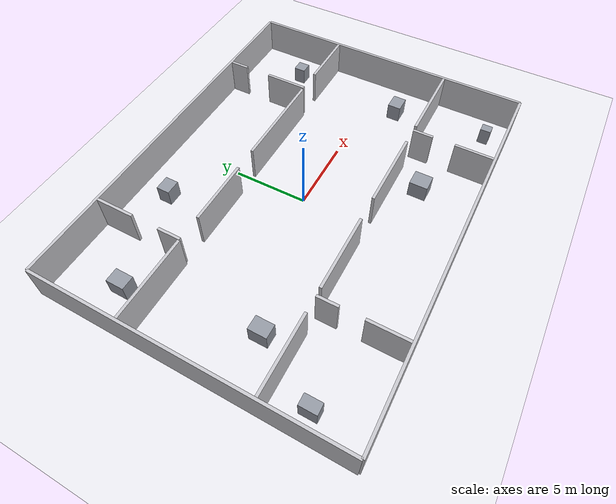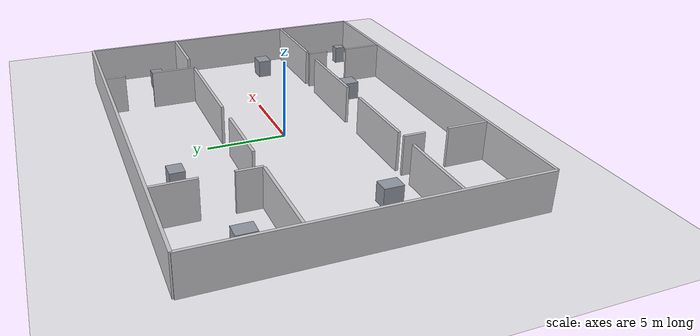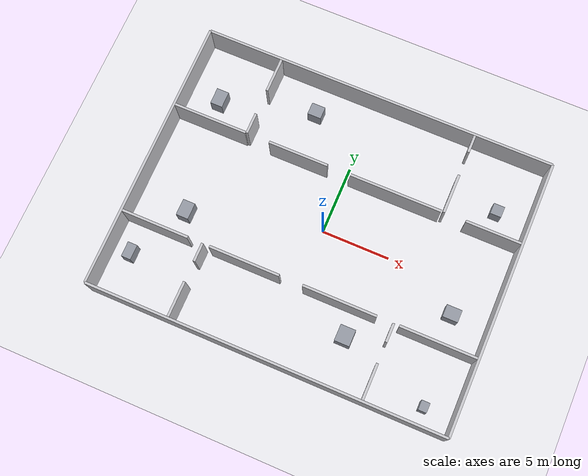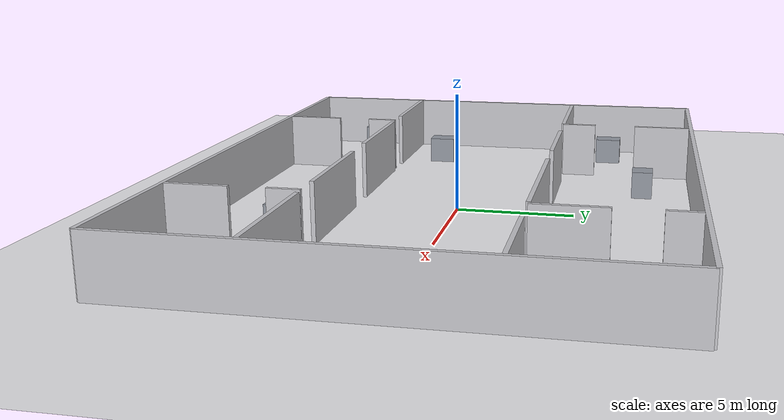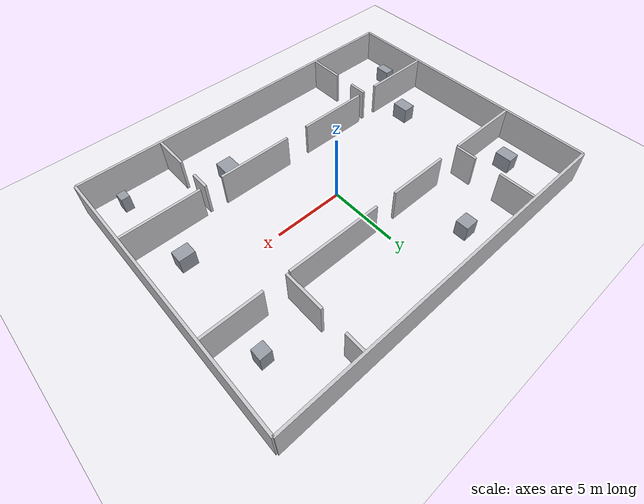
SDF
<?xml version="1.0"?>
<sdf version="1.9"><world name="new_room_world">
<plugin filename="gz-sim-physics-system" name="gz::sim::systems::Physics"/><plugin filename="gz-sim-user-commands-system" name="gz::sim::systems::UserCommands"/><plugin filename="gz-sim-scene-broadcaster-system" name="gz::sim::systems::SceneBroadcaster"/><plugin filename="gz-sim-sensors-system" name="gz::sim::systems::Sensors"><render_engine>ogre2</render_engine></plugin><plugin filename="gz-sim-imu-system" name="gz::sim::systems::Imu"/>
<physics name="new_room_realtime" type="ignored"><max_step_size>0.001</max_step_size><real_time_factor>1</real_time_factor></physics><gravity>0 0 -9.8</gravity><scene><ambient>0.85 0.85 0.87 1</ambient><background>0.68 0.68 0.71 1</background><shadows>false</shadows></scene><light name="sun" type="directional"><cast_shadows>false</cast_shadows><pose>0 0 10 0 0 0</pose><diffuse>0.95 0.95 0.95 1</diffuse><direction>-0.3 0.2 -1</direction></light>
<model name="new_room_ground"><static>true</static><link name="ground_link"><collision name="ground_collision"><geometry><plane><normal>0 0 1</normal><size>40 32</size></plane></geometry></collision><visual name="ground_visual"><geometry><plane><normal>0 0 1</normal><size>40 32</size></plane></geometry><material><ambient>0.92 0.92 0.94 1</ambient><diffuse>0.92 0.92 0.94 1</diffuse></material></visual></link></model>
<model name="mini_hospital_structure"><static>true</static><link name="structure">
<collision name="mx048_c000"><pose>0 10 1.25 0 0 0</pose><geometry><box><size>26 0.18 2.5</size></box></geometry></collision><visual name="mx048_v000"><pose>0 10 1.25 0 0 0</pose><geometry><box><size>26 0.18 2.5</size></box></geometry><material><ambient>0.78 0.78 0.80 1</ambient><diffuse>0.78 0.78 0.80 1</diffuse></material></visual>
<collision name="mx048_c001"><pose>0 -10 1.25 0 0 0</pose><geometry><box><size>26 0.18 2.5</size></box></geometry></collision><visual name="mx048_v001"><pose>0 -10 1.25 0 0 0</pose><geometry><box><size>26 0.18 2.5</size></box></geometry><material><ambient>0.78 0.78 0.80 1</ambient><diffuse>0.78 0.78 0.80 1</diffuse></material></visual>
<collision name="mx048_c002"><pose>-13 0 1.25 0 0 0</pose><geometry><box><size>0.18 20 2.5</size></box></geometry></collision><visual name="mx048_v002"><pose>-13 0 1.25 0 0 0</pose><geometry><box><size>0.18 20 2.5</size></box></geometry><material><ambient>0.78 0.78 0.80 1</ambient><diffuse>0.78 0.78 0.80 1</diffuse></material></visual>
<collision name="mx048_c003"><pose>13 0 1.25 0 0 0</pose><geometry><box><size>0.18 20 2.5</size></box></geometry></collision><visual name="mx048_v003"><pose>13 0 1.25 0 0 0</pose><geometry><box><size>0.18 20 2.5</size></box></geometry><material><ambient>0.78 0.78 0.80 1</ambient><diffuse>0.78 0.78 0.80 1</diffuse></material></visual>
<collision name="mx048_c004"><pose>-10.205 3.9 1.25 0 0 0</pose><geometry><box><size>5.41 0.18 2.5</size></box></geometry></collision><visual name="mx048_v004"><pose>-10.205 3.9 1.25 0 0 0</pose><geometry><box><size>5.41 0.18 2.5</size></box></geometry><material><ambient>0.78 0.78 0.80 1</ambient><diffuse>0.78 0.78 0.80 1</diffuse></material></visual>
<collision name="mx048_c005"><pose>-3.5 3.9 1.25 0 0 0</pose><geometry><box><size>4.4 0.18 2.5</size></box></geometry></collision><visual name="mx048_v005"><pose>-3.5 3.9 1.25 0 0 0</pose><geometry><box><size>4.4 0.18 2.5</size></box></geometry><material><ambient>0.78 0.78 0.80 1</ambient><diffuse>0.78 0.78 0.80 1</diffuse></material></visual>
<collision name="mx048_c006"><pose>3.7 3.9 1.25 0 0 0</pose><geometry><box><size>6.8 0.18 2.5</size></box></geometry></collision><visual name="mx048_v006"><pose>3.7 3.9 1.25 0 0 0</pose><geometry><box><size>6.8 0.18 2.5</size></box></geometry><material><ambient>0.78 0.78 0.80 1</ambient><diffuse>0.78 0.78 0.80 1</diffuse></material></visual>
<collision name="mx048_c007"><pose>10.905 3.9 1.25 0 0 0</pose><geometry><box><size>4.01 0.18 2.5</size></box></geometry></collision><visual name="mx048_v007"><pose>10.905 3.9 1.25 0 0 0</pose><geometry><box><size>4.01 0.18 2.5</size></box></geometry><material><ambient>0.78 0.78 0.80 1</ambient><diffuse>0.78 0.78 0.80 1</diffuse></material></visual>
<collision name="mx048_c008"><pose>-10.455 -4.5 1.25 0 0 0</pose><geometry><box><size>4.91 0.18 2.5</size></box></geometry></collision><visual name="mx048_v008"><pose>-10.455 -4.5 1.25 0 0 0</pose><geometry><box><size>4.91 0.18 2.5</size></box></geometry><material><ambient>0.78 0.78 0.80 1</ambient><diffuse>0.78 0.78 0.80 1</diffuse></material></visual>
<collision name="mx048_c009"><pose>-3.825 -4.5 1.25 0 0 0</pose><geometry><box><size>5.15 0.18 2.5</size></box></geometry></collision><visual name="mx048_v009"><pose>-3.825 -4.5 1.25 0 0 0</pose><geometry><box><size>5.15 0.18 2.5</size></box></geometry><material><ambient>0.78 0.78 0.80 1</ambient><diffuse>0.78 0.78 0.80 1</diffuse></material></visual>
<collision name="mx048_c010"><pose>3.125 -4.5 1.25 0 0 0</pose><geometry><box><size>5.35 0.18 2.5</size></box></geometry></collision><visual name="mx048_v010"><pose>3.125 -4.5 1.25 0 0 0</pose><geometry><box><size>5.35 0.18 2.5</size></box></geometry><material><ambient>0.78 0.78 0.80 1</ambient><diffuse>0.78 0.78 0.80 1</diffuse></material></visual>
<collision name="mx048_c011"><pose>10.155 -4.5 1.25 0 0 0</pose><geometry><box><size>5.51 0.18 2.5</size></box></geometry></collision><visual name="mx048_v011"><pose>10.155 -4.5 1.25 0 0 0</pose><geometry><box><size>5.51 0.18 2.5</size></box></geometry><material><ambient>0.78 0.78 0.80 1</ambient><diffuse>0.78 0.78 0.80 1</diffuse></material></visual>
<collision name="mx048_c012"><pose>-7.4 4.675 1.25 0 0 0</pose><geometry><box><size>0.18 1.55 2.5</size></box></geometry></collision><visual name="mx048_v012"><pose>-7.4 4.675 1.25 0 0 0</pose><geometry><box><size>0.18 1.55 2.5</size></box></geometry><material><ambient>0.78 0.78 0.80 1</ambient><diffuse>0.78 0.78 0.80 1</diffuse></material></visual>
<collision name="mx048_c013"><pose>-7.4 8.63 1.25 0 0 0</pose><geometry><box><size>0.18 2.56 2.5</size></box></geometry></collision><visual name="mx048_v013"><pose>-7.4 8.63 1.25 0 0 0</pose><geometry><box><size>0.18 2.56 2.5</size></box></geometry><material><ambient>0.78 0.78 0.80 1</ambient><diffuse>0.78 0.78 0.80 1</diffuse></material></visual>
<collision name="mx048_c014"><pose>7.3 5.35 1.25 0 0 0</pose><geometry><box><size>0.18 2.9 2.5</size></box></geometry></collision><visual name="mx048_v014"><pose>7.3 5.35 1.25 0 0 0</pose><geometry><box><size>0.18 2.9 2.5</size></box></geometry><material><ambient>0.78 0.78 0.80 1</ambient><diffuse>0.78 0.78 0.80 1</diffuse></material></visual>
<collision name="mx048_c015"><pose>7.3 9.255 1.25 0 0 0</pose><geometry><box><size>0.18 1.31 2.5</size></box></geometry></collision><visual name="mx048_v015"><pose>7.3 9.255 1.25 0 0 0</pose><geometry><box><size>0.18 1.31 2.5</size></box></geometry><material><ambient>0.78 0.78 0.80 1</ambient><diffuse>0.78 0.78 0.80 1</diffuse></material></visual>
<collision name="mx048_c016"><pose>-6.9 -8.63 1.25 0 0 0</pose><geometry><box><size>0.18 2.56 2.5</size></box></geometry></collision><visual name="mx048_v016"><pose>-6.9 -8.63 1.25 0 0 0</pose><geometry><box><size>0.18 2.56 2.5</size></box></geometry><material><ambient>0.78 0.78 0.80 1</ambient><diffuse>0.78 0.78 0.80 1</diffuse></material></visual>
<collision name="mx048_c017"><pose>-6.9 -5.175 1.25 0 0 0</pose><geometry><box><size>0.18 1.35 2.5</size></box></geometry></collision><visual name="mx048_v017"><pose>-6.9 -5.175 1.25 0 0 0</pose><geometry><box><size>0.18 1.35 2.5</size></box></geometry><material><ambient>0.78 0.78 0.80 1</ambient><diffuse>0.78 0.78 0.80 1</diffuse></material></visual>
<collision name="mx048_c018"><pose>7 -8.63 1.25 0 0 0</pose><geometry><box><size>0.18 2.56 2.5</size></box></geometry></collision><visual name="mx048_v018"><pose>7 -8.63 1.25 0 0 0</pose><geometry><box><size>0.18 2.56 2.5</size></box></geometry><material><ambient>0.78 0.78 0.80 1</ambient><diffuse>0.78 0.78 0.80 1</diffuse></material></visual>
<collision name="mx048_c019"><pose>7 -5.175 1.25 0 0 0</pose><geometry><box><size>0.18 1.35 2.5</size></box></geometry></collision><visual name="mx048_v019"><pose>7 -5.175 1.25 0 0 0</pose><geometry><box><size>0.18 1.35 2.5</size></box></geometry><material><ambient>0.78 0.78 0.80 1</ambient><diffuse>0.78 0.78 0.80 1</diffuse></material></visual>
<collision name="mx048_c020"><pose>-10.6 6 0.6 0 0 0</pose><geometry><box><size>0.9 1.2 1.2</size></box></geometry></collision><visual name="mx048_v020"><pose>-10.6 6 0.6 0 0 0</pose><geometry><box><size>0.9 1.2 1.2</size></box></geometry><material><ambient>0.58 0.60 0.64 1</ambient><diffuse>0.58 0.60 0.64 1</diffuse></material></visual>
<collision name="mx048_c021"><pose>-3.8 7.8 0.6 0 0 0</pose><geometry><box><size>1 0.9 1.2</size></box></geometry></collision><visual name="mx048_v021"><pose>-3.8 7.8 0.6 0 0 0</pose><geometry><box><size>1 0.9 1.2</size></box></geometry><material><ambient>0.58 0.60 0.64 1</ambient><diffuse>0.58 0.60 0.64 1</diffuse></material></visual>
<collision name="mx048_c022"><pose>10.7 5.9 0.6 0 0 0</pose><geometry><box><size>0.8 0.8 1.2</size></box></geometry></collision><visual name="mx048_v022"><pose>10.7 5.9 0.6 0 0 0</pose><geometry><box><size>0.8 0.8 1.2</size></box></geometry><material><ambient>0.58 0.60 0.64 1</ambient><diffuse>0.58 0.60 0.64 1</diffuse></material></visual>
<collision name="mx048_c023"><pose>-11.6 -6.7 0.6 0 0 0</pose><geometry><box><size>0.7 1.1 1.2</size></box></geometry></collision><visual name="mx048_v023"><pose>-11.6 -6.7 0.6 0 0 0</pose><geometry><box><size>0.7 1.1 1.2</size></box></geometry><material><ambient>0.58 0.60 0.64 1</ambient><diffuse>0.58 0.60 0.64 1</diffuse></material></visual>
<collision name="mx048_c024"><pose>4.3 -6.3 0.6 0 0 0</pose><geometry><box><size>1.1 1.2 1.2</size></box></geometry></collision><visual name="mx048_v024"><pose>4.3 -6.3 0.6 0 0 0</pose><geometry><box><size>1.1 1.2 1.2</size></box></geometry><material><ambient>0.58 0.60 0.64 1</ambient><diffuse>0.58 0.60 0.64 1</diffuse></material></visual>
<collision name="mx048_c025"><pose>10.9 -8.6 0.6 0 0 0</pose><geometry><box><size>0.6 0.7 1.2</size></box></geometry></collision><visual name="mx048_v025"><pose>10.9 -8.6 0.6 0 0 0</pose><geometry><box><size>0.6 0.7 1.2</size></box></geometry><material><ambient>0.58 0.60 0.64 1</ambient><diffuse>0.58 0.60 0.64 1</diffuse></material></visual>
<collision name="mx048_c026"><pose>-9.3 -2.5 0.6 0 0 0</pose><geometry><box><size>0.9 1.2 1.2</size></box></geometry></collision><visual name="mx048_v026"><pose>-9.3 -2.5 0.6 0 0 0</pose><geometry><box><size>0.9 1.2 1.2</size></box></geometry><material><ambient>0.58 0.60 0.64 1</ambient><diffuse>0.58 0.60 0.64 1</diffuse></material></visual>
<collision name="mx048_c027"><pose>10.4 -2.1 0.6 0 0 0</pose><geometry><box><size>1.1 0.9 1.2</size></box></geometry></collision><visual name="mx048_v027"><pose>10.4 -2.1 0.6 0 0 0</pose><geometry><box><size>1.1 0.9 1.2</size></box></geometry><material><ambient>0.58 0.60 0.64 1</ambient><diffuse>0.58 0.60 0.64 1</diffuse></material></visual>
</link></model></world></sdf>
